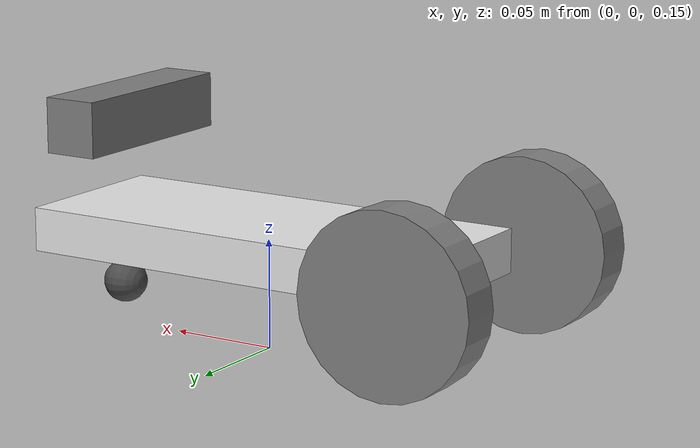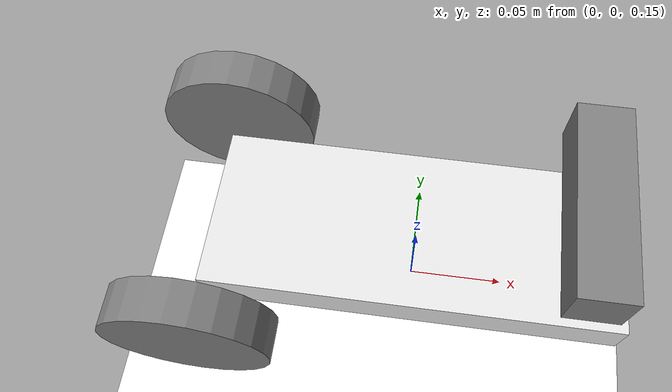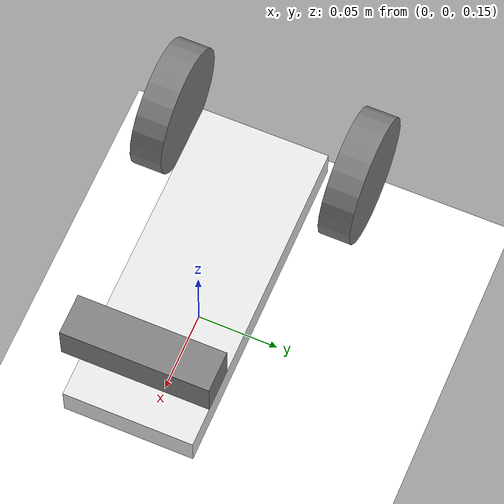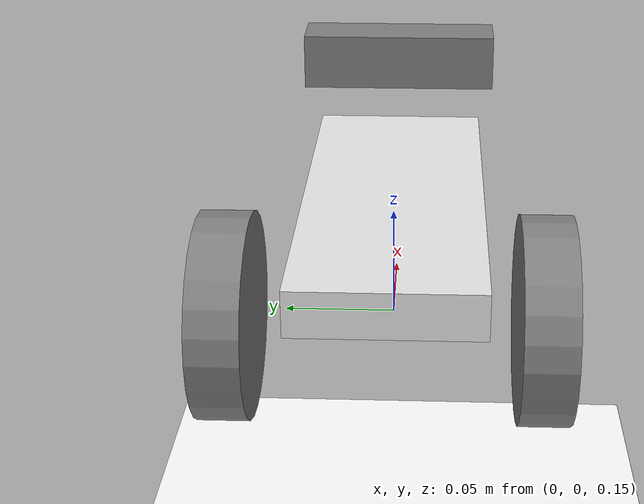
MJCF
<mujoco>
	<option	gravity="0 0 -9.81" density="1" viscosity="1e-5" integrator="RK4"/>
	<asset>
		<texture builtin="gradient" type="skybox" height="100" width="100" rgb1="1 1 1" rgb2="0 0 0"/>
		<texture name="texgeom" builtin="flat" height="1278" mark="cross" markrgb="1 1 1" random="0.01" rgb1="0.8 0.6 0.4" rgb2="0.8 0.6 0.4" type="cube" width="127"/>
		<texture name="texplane" builtin="checker" height="100" width="100" rgb1="0 0 0" rgb2="0.8 0.8 0.8" type="2d"/>
		<material name="MatPlane" reflectance="0.5" shininess="1" specular="1" texrepeat="60 60" texture="texplane"/>
		<material name="geom" texture="texgeom" texuniform="true"/>
	</asset>
  <default>
    <default class="wheel">
      <geom euler="90 0 0" fitscale="1.2" type="cylinder" size=".04 0.01" friction="2 0.005 0.0001" contype="1" conaffinity="0" mass="0.498952"/>
    </default>
    <default class="throttle">
      <joint type="hinge" axis="0 1 0" frictionloss="0.001" damping="0.01" armature="0.01" limited="false"/>
    </default>
  </default>
  <worldbody>
  	<light diffuse=".5 .5 .5" pos="0 0 3" dir="0 0 -1"/>
	<geom conaffinity="1" condim="3" material="MatPlane" name="floor" pos="0 0 0" rgba="1 1 1 1" size="10 10 0.1" type="plane"/>

    <body name="twho_wheel" pos="0 0 0.2" euler="0 90 0">
      <camera name="third_person" mode="fixed" pos="-.4 0 -.4" euler="0 215 270"/>
      <joint type="free"/>

      <camera name="realsense_d435i" mode="fixed" pos="-0.05 0 .075" euler="0 215 270"/>
	  <geom type="box" size=".01 .04 .1" rgba=".9 .9 .9 1"/>
      <site name="imu" pos="0 0 0"/>

      <geom name="realsense_d435i" size="0.012525 0.045 0.0125" pos="-0.05 0 .075" mass="0.072" type="box"/>

      <body name="wheel_left" pos="0 0.06 -0.1">
        <joint class="throttle" name="wheel_left_throttle"/>
        <geom class="wheel"/>
        <geom class="wheel" rgba=".1 .1 .1 1" contype="0" conaffinity="0" group="1"/>
      </body>
      <body name="wheel_right" pos="0 -0.06 -0.1">
        <joint class="throttle" name="wheel_right_throttle"/>
        <geom class="wheel"/>
        <geom class="wheel" rgba=".1 .1 .1 1" contype="0" conaffinity="0" group="1"/>
      </body>
	  <body name="caster" pos=".03 0 .08" euler='0 0 0'>
	  	<joint type="ball" frictionloss="0.01" damping="0.01" armature="0.01" limited="false"/>
		<geom type="sphere" size=".01" rgba=".3 .3 .3 1"/>
	  </body>
    </body>
  </worldbody>
  <actuator>
    <velocity kv="100" gear="0.04" forcelimited="true" forcerange="-500 500" name="throttle_velocity_left" tendon="throttle_left"/>
	<velocity kv="100" gear="0.04" forcelimited="true" forcerange="-500 500" name="throttle_velocity_right" tendon="throttle_right"/>
  </actuator>
  <tendon>
    <fixed name="throttle_left">
      <joint joint="wheel_left_throttle" coef="0.25"/>
    </fixed>
	<fixed name="throttle_right">
      <joint joint="wheel_right_throttle" coef="0.25"/>
    </fixed>
  </tendon>
  <sensor>
    <accelerometer name="accelerometer" site="imu" />
    <gyro name="gyro" site="imu" />
    <velocimeter name="velocimeter" site="imu" />
  </sensor>
</mujoco>
